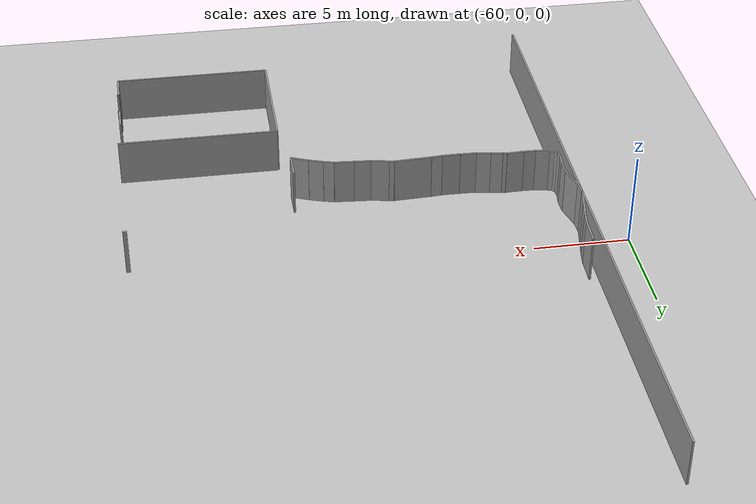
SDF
<sdf version="1.6">
 <world name="default">
  <model name="ground_plane">
   <static>1</static>
   <link name="link">
    <collision name="collision">
     <geometry><plane><normal>0 0 1</normal><size>100 100</size></plane></geometry>
     <surface><friction><ode><mu>100</mu><mu2>50</mu2></ode></friction></surface>
    </collision>
    <visual name="visual">
     <cast_shadows>0</cast_shadows>
     <geometry><plane><normal>0 0 1</normal><size>100 100</size></plane></geometry>
     <material>
      <script><uri>file://media/materials/scripts/gazebo.material</uri><name>Gazebo/Grey</name></script>
     </material>
    </visual>
   </link>
  </model>
  <model name="0510030939_A_40_1_103">
   <static>1</static>
   <link name="Wall_9">
    <collision name="Wall_9_Collision">
     <geometry><box><size>0.397898713287 0.1 2.5</size></box></geometry>
     <pose>0.198949356643 0 1.25 0 0 0</pose>
    </collision>
    <visual name="Wall_9_Visual">
     <pose>0.198949356643 0 1.25 0 0 0</pose>
     <geometry><box><size>0.397898713287 0.1 2.5</size></box></geometry>
     <material>
      <script><uri>file://media/materials/scripts/gazebo.material</uri><name>Gazebo/Grey</name></script>
      <ambient>1 1 1 1</ambient>
     </material>
    </visual>
    <pose>0.363084156686 -22.5781364171 0 0 0 1.68149234334</pose>
   </link>
   <link name="Wall_10">
    <collision name="Wall_10_Collision">
     <geometry><box><size>0.665108872387 0.1 2.5</size></box></geometry>
     <pose>0.332554436194 0 1.25 0 0 0</pose>
    </collision>
    <visual name="Wall_10_Visual">
     <pose>0.332554436194 0 1.25 0 0 0</pose>
     <geometry><box><size>0.665108872387 0.1 2.5</size></box></geometry>
     <material>
      <script><uri>file://media/materials/scripts/gazebo.material</uri><name>Gazebo/Grey</name></script>
      <ambient>1 1 1 1</ambient>
     </material>
    </visual>
    <pose>0.319128252375 -22.1826730629 0 0 0 1.43825110736</pose>
   </link>
   <link name="Wall_11">
    <collision name="Wall_11_Collision">
     <geometry><box><size>0.772687319202 0.1 2.5</size></box></geometry>
     <pose>0.386343659601 0 1.25 0 0 0</pose>
    </collision>
    <visual name="Wall_11_Visual">
     <pose>0.386343659601 0 1.25 0 0 0</pose>
     <geometry><box><size>0.772687319202 0.1 2.5</size></box></geometry>
     <material>
      <script><uri>file://media/materials/scripts/gazebo.material</uri><name>Gazebo/Grey</name></script>
      <ambient>1 1 1 1</ambient>
     </material>
    </visual>
    <pose>0.407027353306 -21.5233980367 0 0 0 1.60914157728</pose>
   </link>
   <link name="Wall_12">
    <collision name="Wall_12_Collision">
     <geometry><box><size>1.2908194455 0.1 2.5</size></box></geometry>
     <pose>0.645409722752 0 1.25 0 0 0</pose>
    </collision>
    <visual name="Wall_12_Visual">
     <pose>0.645409722752 0 1.25 0 0 0</pose>
     <geometry><box><size>1.2908194455 0.1 2.5</size></box></geometry>
     <material>
      <script><uri>file://media/materials/scripts/gazebo.material</uri><name>Gazebo/Grey</name></script>
      <ambient>1 1 1 1</ambient>
     </material>
    </visual>
    <pose>0.377405724815 -20.7512787114 0 0 0 1.83284775393</pose>
   </link>
   <link name="Wall_13">
    <collision name="Wall_13_Collision">
     <geometry><box><size>0.670313680231 0.1 2.5</size></box></geometry>
     <pose>0.335156840115 0 1.25 0 0 0</pose>
    </collision>
    <visual name="Wall_13_Visual">
     <pose>0.335156840115 0 1.25 0 0 0</pose>
     <geometry><box><size>0.670313680231 0.1 2.5</size></box></geometry>
     <material>
      <script><uri>file://media/materials/scripts/gazebo.material</uri><name>Gazebo/Grey</name></script>
      <ambient>1 1 1 1</ambient>
     </material>
    </visual>
    <pose>0.0430028274613 -19.504527115 0 0 0 1.63499370317</pose>
   </link>
   <link name="Wall_14">
    <collision name="Wall_14_Collision">
     <geometry><box><size>1.0477580429 0.1 2.5</size></box></geometry>
     <pose>0.52387902145 0 1.25 0 0 0</pose>
    </collision>
    <visual name="Wall_14_Visual">
     <pose>0.52387902145 0 1.25 0 0 0</pose>
     <geometry><box><size>1.0477580429 0.1 2.5</size></box></geometry>
     <material>
      <script><uri>file://media/materials/scripts/gazebo.material</uri><name>Gazebo/Grey</name></script>
      <ambient>1 1 1 1</ambient>
     </material>
    </visual>
    <pose>0.0 -18.8355942434 0 0 0 1.40280433486</pose>
   </link>
   <link name="Wall_15">
    <collision name="Wall_15_Collision">
     <geometry><box><size>1.00523139012 0.1 2.5</size></box></geometry>
     <pose>0.502615695059 0 1.25 0 0 0</pose>
    </collision>
    <visual name="Wall_15_Visual">
     <pose>0.502615695059 0 1.25 0 0 0</pose>
     <geometry><box><size>1.00523139012 0.1 2.5</size></box></geometry>
     <material>
      <script><uri>file://media/materials/scripts/gazebo.material</uri><name>Gazebo/Grey</name></script>
      <ambient>1 1 1 1</ambient>
     </material>
    </visual>
    <pose>0.175188232678 -17.8025860152 0 0 0 1.38277233144</pose>
   </link>
   <link name="Wall_16">
    <collision name="Wall_16_Collision">
     <geometry><box><size>0.703167774783 0.1 2.5</size></box></geometry>
     <pose>0.351583887391 0 1.25 0 0 0</pose>
    </collision>
    <visual name="Wall_16_Visual">
     <pose>0.351583887391 0 1.25 0 0 0</pose>
     <geometry><box><size>0.703167774783 0.1 2.5</size></box></geometry>
     <material>
      <script><uri>file://media/materials/scripts/gazebo.material</uri><name>Gazebo/Grey</name></script>
      <ambient>1 1 1 1</ambient>
     </material>
    </visual>
    <pose>0.363084156686 -16.8150713219 0 0 0 1.44546401047</pose>
   </link>
   <link name="Wall_17">
    <collision name="Wall_17_Collision">
     <geometry><box><size>1.38489533323 0.1 2.5</size></box></geometry>
     <pose>0.692447666616 0 1.25 0 0 0</pose>
    </collision>
    <visual name="Wall_17_Visual">
     <pose>0.692447666616 0 1.25 0 0 0</pose>
     <geometry><box><size>1.38489533323 0.1 2.5</size></box></geometry>
     <material>
      <script><uri>file://media/materials/scripts/gazebo.material</uri><name>Gazebo/Grey</name></script>
      <ambient>1 1 1 1</ambient>
     </material>
    </visual>
    <pose>0.450983257617 -16.1174190679 0 0 0 1.54699173743</pose>
   </link>
   <link name="Wall_47">
    <collision name="Wall_47_Collision">
     <geometry><box><size>0.212599675954 0.1 2.5</size></box></geometry>
     <pose>0.106299837977 0 1.25 0 0 0</pose>
    </collision>
    <visual name="Wall_47_Visual">
     <pose>0.106299837977 0 1.25 0 0 0</pose>
     <geometry><box><size>0.212599675954 0.1 2.5</size></box></geometry>
     <material>
      <script><uri>file://media/materials/scripts/gazebo.material</uri><name>Gazebo/Grey</name></script>
      <ambient>1 1 1 1</ambient>
     </material>
    </visual>
    <pose>23.1380754201 -18.7676080948 0 0 0 0.0</pose>
   </link>
   <link name="Wall_51">
    <collision name="Wall_51_Collision">
     <geometry><box><size>1.47345680973 0.1 2.5</size></box></geometry>
     <pose>0.736728404867 0 1.25 0 0 0</pose>
    </collision>
    <visual name="Wall_51_Visual">
     <pose>0.736728404867 0 1.25 0 0 0</pose>
     <geometry><box><size>1.47345680973 0.1 2.5</size></box></geometry>
     <material>
      <script><uri>file://media/materials/scripts/gazebo.material</uri><name>Gazebo/Grey</name></script>
      <ambient>1 1 1 1</ambient>
     </material>
    </visual>
    <pose>14.3930234775 -22.6842456397 0 0 0 -1.57079632679</pose>
   </link>
   <link name="Wall_52">
    <collision name="Wall_52_Collision">
     <geometry><box><size>0.981270283015 0.1 2.5</size></box></geometry>
     <pose>0.490635141507 0 1.25 0 0 0</pose>
    </collision>
    <visual name="Wall_52_Visual">
     <pose>0.490635141507 0 1.25 0 0 0</pose>
     <geometry><box><size>0.981270283015 0.1 2.5</size></box></geometry>
     <material>
      <script><uri>file://media/materials/scripts/gazebo.material</uri><name>Gazebo/Grey</name></script>
      <ambient>1 1 1 1</ambient>
     </material>
    </visual>
    <pose>14.3930234775 -24.1577024494 0 0 0 2.74482911056</pose>
   </link>
   <link name="Wall_53">
    <collision name="Wall_53_Collision">
     <geometry><box><size>0.784336868416 0.1 2.5</size></box></geometry>
     <pose>0.392168434208 0 1.25 0 0 0</pose>
    </collision>
    <visual name="Wall_53_Visual">
     <pose>0.392168434208 0 1.25 0 0 0</pose>
     <geometry><box><size>0.784336868416 0.1 2.5</size></box></geometry>
     <material>
      <script><uri>file://media/materials/scripts/gazebo.material</uri><name>Gazebo/Grey</name></script>
      <ambient>1 1 1 1</ambient>
     </material>
    </visual>
    <pose>13.4879817009 -23.7785049401 0 0 0 2.81810011919</pose>
   </link>
   <link name="Wall_54">
    <collision name="Wall_54_Collision">
     <geometry><box><size>0.566944915028 0.1 2.5</size></box></geometry>
     <pose>0.283472457514 0 1.25 0 0 0</pose>
    </collision>
    <visual name="Wall_54_Visual">
     <pose>0.283472457514 0 1.25 0 0 0</pose>
     <geometry><box><size>0.566944915028 0.1 2.5</size></box></geometry>
     <material>
      <script><uri>file://media/materials/scripts/gazebo.material</uri><name>Gazebo/Grey</name></script>
      <ambient>1 1 1 1</ambient>
     </material>
    </visual>
    <pose>12.7443276043 -23.5291800362 0 0 0 2.88204426087</pose>
   </link>
   <link name="Wall_55">
    <collision name="Wall_55_Collision">
     <geometry><box><size>1.05852298376 0.1 2.5</size></box></geometry>
     <pose>0.529261491879 0 1.25 0 0 0</pose>
    </collision>
    <visual name="Wall_55_Visual">
     <pose>0.529261491879 0 1.25 0 0 0</pose>
     <geometry><box><size>1.05852298376 0.1 2.5</size></box></geometry>
     <material>
      <script><uri>file://media/materials/scripts/gazebo.material</uri><name>Gazebo/Grey</name></script>
      <ambient>1 1 1 1</ambient>
     </material>
    </visual>
    <pose>12.1963719541 -23.3836769705 0 0 0 3.06925879369</pose>
   </link>
   <link name="Wall_56">
    <collision name="Wall_56_Collision">
     <geometry><box><size>0.857853238518 0.1 2.5</size></box></geometry>
     <pose>0.428926619259 0 1.25 0 0 0</pose>
    </collision>
    <visual name="Wall_56_Visual">
     <pose>0.428926619259 0 1.25 0 0 0</pose>
     <geometry><box><size>0.857853238518 0.1 2.5</size></box></geometry>
     <material>
      <script><uri>file://media/materials/scripts/gazebo.material</uri><name>Gazebo/Grey</name></script>
      <ambient>1 1 1 1</ambient>
     </material>
    </visual>
    <pose>11.1406169584 -23.3071766687 0 0 0 3.07131948923</pose>
   </link>
   <link name="Wall_57">
    <collision name="Wall_57_Collision">
     <geometry><box><size>0.98062339268 0.1 2.5</size></box></geometry>
     <pose>0.49031169634 0 1.25 0 0 0</pose>
    </collision>
    <visual name="Wall_57_Visual">
     <pose>0.49031169634 0 1.25 0 0 0</pose>
     <geometry><box><size>0.98062339268 0.1 2.5</size></box></geometry>
     <material>
      <script><uri>file://media/materials/scripts/gazebo.material</uri><name>Gazebo/Grey</name></script>
      <ambient>1 1 1 1</ambient>
     </material>
    </visual>
    <pose>10.2848810242 -23.2469422118 0 0 0 2.96008168394</pose>
   </link>
   <link name="Wall_58">
    <collision name="Wall_58_Collision">
     <geometry><box><size>0.270733181045 0.1 2.5</size></box></geometry>
     <pose>0.135366590522 0 1.25 0 0 0</pose>
    </collision>
    <visual name="Wall_58_Visual">
     <pose>0.135366590522 0 1.25 0 0 0</pose>
     <geometry><box><size>0.270733181045 0.1 2.5</size></box></geometry>
     <material>
      <script><uri>file://media/materials/scripts/gazebo.material</uri><name>Gazebo/Grey</name></script>
      <ambient>1 1 1 1</ambient>
     </material>
    </visual>
    <pose>9.32036725228 -23.0699240715 0 0 0 2.98084243535</pose>
   </link>
   <link name="Wall_59">
    <collision name="Wall_59_Collision">
     <geometry><box><size>2.00081593142 0.1 2.5</size></box></geometry>
     <pose>1.00040796571 0 1.25 0 0 0</pose>
    </collision>
    <visual name="Wall_59_Visual">
     <pose>1.00040796571 0 1.25 0 0 0</pose>
     <geometry><box><size>2.00081593142 0.1 2.5</size></box></geometry>
     <material>
      <script><uri>file://media/materials/scripts/gazebo.material</uri><name>Gazebo/Grey</name></script>
      <ambient>1 1 1 1</ambient>
     </material>
    </visual>
    <pose>9.05312450361 -23.0265908441 0 0 0 -3.09387662703</pose>
   </link>
   <link name="Wall_60">
    <collision name="Wall_60_Collision">
     <geometry><box><size>0.590427360554 0.1 2.5</size></box></geometry>
     <pose>0.295213680277 0 1.25 0 0 0</pose>
    </collision>
    <visual name="Wall_60_Visual">
     <pose>0.295213680277 0 1.25 0 0 0</pose>
     <geometry><box><size>0.590427360554 0.1 2.5</size></box></geometry>
     <material>
      <script><uri>file://media/materials/scripts/gazebo.material</uri><name>Gazebo/Grey</name></script>
      <ambient>1 1 1 1</ambient>
     </material>
    </visual>
    <pose>7.05458588811 -23.122025606 0 0 0 -3.04826319616</pose>
   </link>
   <link name="Wall_61">
    <collision name="Wall_61_Collision">
     <geometry><box><size>0.972407893654 0.1 2.5</size></box></geometry>
     <pose>0.486203946827 0 1.25 0 0 0</pose>
    </collision>
    <visual name="Wall_61_Visual">
     <pose>0.486203946827 0 1.25 0 0 0</pose>
     <geometry><box><size>0.972407893654 0.1 2.5</size></box></geometry>
     <material>
      <script><uri>file://media/materials/scripts/gazebo.material</uri><name>Gazebo/Grey</name></script>
      <ambient>1 1 1 1</ambient>
     </material>
    </visual>
    <pose>6.46672808717 -23.1770499095 0 0 0 -3.13597326684</pose>
   </link>
   <link name="Wall_62">
    <collision name="Wall_62_Collision">
     <geometry><box><size>0.863412816515 0.1 2.5</size></box></geometry>
     <pose>0.431706408257 0 1.25 0 0 0</pose>
    </collision>
    <visual name="Wall_62_Visual">
     <pose>0.431706408257 0 1.25 0 0 0</pose>
     <geometry><box><size>0.863412816515 0.1 2.5</size></box></geometry>
     <material>
      <script><uri>file://media/materials/scripts/gazebo.material</uri><name>Gazebo/Grey</name></script>
      <ambient>1 1 1 1</ambient>
     </material>
    </visual>
    <pose>5.49433554659 -23.1825142167 0 0 0 3.11494996051</pose>
   </link>
   <link name="Wall_63">
    <collision name="Wall_63_Collision">
     <geometry><box><size>0.766190139482 0.1 2.5</size></box></geometry>
     <pose>0.383095069741 0 1.25 0 0 0</pose>
    </collision>
    <visual name="Wall_63_Visual">
     <pose>0.383095069741 0 1.25 0 0 0</pose>
     <geometry><box><size>0.766190139482 0.1 2.5</size></box></geometry>
     <material>
      <script><uri>file://media/materials/scripts/gazebo.material</uri><name>Gazebo/Grey</name></script>
      <ambient>1 1 1 1</ambient>
     </material>
    </visual>
    <pose>4.63122915144 -23.1595132954 0 0 0 2.9781617659</pose>
   </link>
   <link name="Wall_64">
    <collision name="Wall_64_Collision">
     <geometry><box><size>0.632165227939 0.1 2.5</size></box></geometry>
     <pose>0.316082613969 0 1.25 0 0 0</pose>
    </collision>
    <visual name="Wall_64_Visual">
     <pose>0.316082613969 0 1.25 0 0 0</pose>
     <geometry><box><size>0.632165227939 0.1 2.5</size></box></geometry>
     <material>
      <script><uri>file://media/materials/scripts/gazebo.material</uri><name>Gazebo/Grey</name></script>
      <ambient>1 1 1 1</ambient>
     </material>
    </visual>
    <pose>3.87524859421 -23.0348508435 0 0 0 2.96580256413</pose>
   </link>
   <link name="Wall_65">
    <collision name="Wall_65_Collision">
     <geometry><box><size>0.219143980399 0.1 2.5</size></box></geometry>
     <pose>0.1095719902 0 1.25 0 0 0</pose>
    </collision>
    <visual name="Wall_65_Visual">
     <pose>0.1095719902 0 1.25 0 0 0</pose>
     <geometry><box><size>0.219143980399 0.1 2.5</size></box></geometry>
     <material>
      <script><uri>file://media/materials/scripts/gazebo.material</uri><name>Gazebo/Grey</name></script>
      <ambient>1 1 1 1</ambient>
     </material>
    </visual>
    <pose>3.25282587286 -22.9242939289 0 0 0 3.03119157995</pose>
   </link>
   <link name="Wall_66">
    <collision name="Wall_66_Collision">
     <geometry><box><size>0.914649446551 0.1 2.5</size></box></geometry>
     <pose>0.457324723276 0 1.25 0 0 0</pose>
    </collision>
    <visual name="Wall_66_Visual">
     <pose>0.457324723276 0 1.25 0 0 0</pose>
     <geometry><box><size>0.914649446551 0.1 2.5</size></box></geometry>
     <material>
      <script><uri>file://media/materials/scripts/gazebo.material</uri><name>Gazebo/Grey</name></script>
      <ambient>1 1 1 1</ambient>
     </material>
    </visual>
    <pose>3.03501604346 -22.9001493154 0 0 0 -3.10212483913</pose>
   </link>
   <link name="Wall_67">
    <collision name="Wall_67_Collision">
     <geometry><box><size>0.632414306692 0.1 2.5</size></box></geometry>
     <pose>0.316207153346 0 1.25 0 0 0</pose>
    </collision>
    <visual name="Wall_67_Visual">
     <pose>0.316207153346 0 1.25 0 0 0</pose>
     <geometry><box><size>0.632414306692 0.1 2.5</size></box></geometry>
     <material>
      <script><uri>file://media/materials/scripts/gazebo.material</uri><name>Gazebo/Grey</name></script>
      <ambient>1 1 1 1</ambient>
     </material>
    </visual>
    <pose>2.12107888299 -22.9362391588 0 0 0 3.11305539415</pose>
   </link>
   <link name="Wall_68">
    <collision name="Wall_68_Collision">
     <geometry><box><size>0.746912160498 0.1 2.5</size></box></geometry>
     <pose>0.373456080249 0 1.25 0 0 0</pose>
    </collision>
    <visual name="Wall_68_Visual">
     <pose>0.373456080249 0 1.25 0 0 0</pose>
     <geometry><box><size>0.746912160498 0.1 2.5</size></box></geometry>
     <material>
      <script><uri>file://media/materials/scripts/gazebo.material</uri><name>Gazebo/Grey</name></script>
      <ambient>1 1 1 1</ambient>
     </material>
    </visual>
    <pose>1.48892207008 -22.9181942371 0 0 0 2.97027929521</pose>
   </link>
   <link name="Wall_69">
    <collision name="Wall_69_Collision">
     <geometry><box><size>0.271215814315 0.1 2.5</size></box></geometry>
     <pose>0.135607907158 0 1.25 0 0 0</pose>
    </collision>
    <visual name="Wall_69_Visual">
     <pose>0.135607907158 0 1.25 0 0 0</pose>
     <geometry><box><size>0.271215814315 0.1 2.5</size></box></geometry>
     <material>
      <script><uri>file://media/materials/scripts/gazebo.material</uri><name>Gazebo/Grey</name></script>
      <ambient>1 1 1 1</ambient>
     </material>
    </visual>
    <pose>0.752943419004 -22.7908631699 0 0 0 2.83900127149</pose>
   </link>
   <link name="Wall_70">
    <collision name="Wall_70_Collision">
     <geometry><box><size>0.185879270172 0.1 2.5</size></box></geometry>
     <pose>0.092939635086 0 1.25 0 0 0</pose>
    </collision>
    <visual name="Wall_70_Visual">
     <pose>0.092939635086 0 1.25 0 0 0</pose>
     <geometry><box><size>0.185879270172 0.1 2.5</size></box></geometry>
     <material>
      <script><uri>file://media/materials/scripts/gazebo.material</uri><name>Gazebo/Grey</name></script>
      <ambient>1 1 1 1</ambient>
     </material>
    </visual>
    <pose>0.494049623535 -22.7100422531 0 0 0 2.3526172068</pose>
   </link>
   <link name="Wall_96">
    <collision name="Wall_96_Collision">
     <geometry><box><size>6.52641611335 0.1 2.5</size></box></geometry>
     <pose>3.26320805668 0 1.25 0 0 0</pose>
    </collision>
    <visual name="Wall_96_Visual">
     <pose>3.26320805668 0 1.25 0 0 0</pose>
     <geometry><box><size>6.52641611335 0.1 2.5</size></box></geometry>
     <material>
      <script><uri>file://media/materials/scripts/gazebo.material</uri><name>Gazebo/Grey</name></script>
      <ambient>1 1 1 1</ambient>
     </material>
    </visual>
    <pose>14.82025606 -33.3953045081 0 0 0 1.57079632679</pose>
   </link>
   <link name="Wall_97">
    <collision name="Wall_97_Collision">
     <geometry><box><size>8.52965657464 0.1 2.5</size></box></geometry>
     <pose>4.26482828732 0 1.25 0 0 0</pose>
    </collision>
    <visual name="Wall_97_Visual">
     <pose>4.26482828732 0 1.25 0 0 0</pose>
     <geometry><box><size>8.52965657464 0.1 2.5</size></box></geometry>
     <material>
      <script><uri>file://media/materials/scripts/gazebo.material</uri><name>Gazebo/Grey</name></script>
      <ambient>1 1 1 1</ambient>
     </material>
    </visual>
    <pose>14.82025606 -26.8688883947 0 0 0 0.0</pose>
   </link>
   <link name="Wall_101">
    <collision name="Wall_101_Collision">
     <geometry><box><size>1.40216666137 0.1 2.5</size></box></geometry>
     <pose>0.701083330686 0 1.25 0 0 0</pose>
    </collision>
    <visual name="Wall_101_Visual">
     <pose>0.701083330686 0 1.25 0 0 0</pose>
     <geometry><box><size>1.40216666137 0.1 2.5</size></box></geometry>
     <material>
      <script><uri>file://media/materials/scripts/gazebo.material</uri><name>Gazebo/Grey</name></script>
      <ambient>1 1 1 1</ambient>
     </material>
    </visual>
    <pose>23.1629824952 -28.7801251708 0 0 0 -1.57079632679</pose>
   </link>
   <link name="Wall_102">
    <collision name="Wall_102_Collision">
     <geometry><box><size>0.0330399974585 0.1 2.5</size></box></geometry>
     <pose>0.0165199987292 0 1.25 0 0 0</pose>
    </collision>
    <visual name="Wall_102_Visual">
     <pose>0.0165199987292 0 1.25 0 0 0</pose>
     <geometry><box><size>0.0330399974585 0.1 2.5</size></box></geometry>
     <material>
      <script><uri>file://media/materials/scripts/gazebo.material</uri><name>Gazebo/Grey</name></script>
      <ambient>1 1 1 1</ambient>
     </material>
    </visual>
    <pose>23.1629824952 -30.1822918321 0 0 0 0.0</pose>
   </link>
   <link name="Wall_103">
    <collision name="Wall_103_Collision">
     <geometry><box><size>0.0785335324205 0.1 2.5</size></box></geometry>
     <pose>0.0392667662103 0 1.25 0 0 0</pose>
    </collision>
    <visual name="Wall_103_Visual">
     <pose>0.0392667662103 0 1.25 0 0 0</pose>
     <geometry><box><size>0.0785335324205 0.1 2.5</size></box></geometry>
     <material>
      <script><uri>file://media/materials/scripts/gazebo.material</uri><name>Gazebo/Grey</name></script>
      <ambient>1 1 1 1</ambient>
     </material>
    </visual>
    <pose>23.1960224926 -30.1822918321 0 0 0 -1.57079632679</pose>
   </link>
   <link name="Wall_104">
    <collision name="Wall_104_Collision">
     <geometry><box><size>0.0847603011723 0.1 2.5</size></box></geometry>
     <pose>0.0423801505861 0 1.25 0 0 0</pose>
    </collision>
    <visual name="Wall_104_Visual">
     <pose>0.0423801505861 0 1.25 0 0 0</pose>
     <geometry><box><size>0.0847603011723 0.1 2.5</size></box></geometry>
     <material>
      <script><uri>file://media/materials/scripts/gazebo.material</uri><name>Gazebo/Grey</name></script>
      <ambient>1 1 1 1</ambient>
     </material>
    </visual>
    <pose>23.1960224926 -31.8345458589 0 0 0 -1.57079632679</pose>
   </link>
   <link name="Wall_106">
    <collision name="Wall_106_Collision">
     <geometry><box><size>1.47828573244 0.1 2.5</size></box></geometry>
     <pose>0.73914286622 0 1.25 0 0 0</pose>
    </collision>
    <visual name="Wall_106_Visual">
     <pose>0.73914286622 0 1.25 0 0 0</pose>
     <geometry><box><size>1.47828573244 0.1 2.5</size></box></geometry>
     <material>
      <script><uri>file://media/materials/scripts/gazebo.material</uri><name>Gazebo/Grey</name></script>
      <ambient>1 1 1 1</ambient>
     </material>
    </visual>
    <pose>23.1614575722 -31.9193061601 0 0 0 -1.57079632679</pose>
   </link>
   <link name="Wall_107">
    <collision name="Wall_107_Collision">
     <geometry><box><size>8.34120182585 0.1 2.5</size></box></geometry>
     <pose>4.17060091292 0 1.25 0 0 0</pose>
    </collision>
    <visual name="Wall_107_Visual">
     <pose>4.17060091292 0 1.25 0 0 0</pose>
     <geometry><box><size>8.34120182585 0.1 2.5</size></box></geometry>
     <material>
      <script><uri>file://media/materials/scripts/gazebo.material</uri><name>Gazebo/Grey</name></script>
      <ambient>1 1 1 1</ambient>
     </material>
    </visual>
    <pose>23.1614575722 -33.3975918925 0 0 0 3.14131842638</pose>
   </link>
   <link name="Wall_307">
    <collision name="Wall_307_Collision">
     <geometry><box><size>35.3122597452 0.1 2.5</size></box></geometry>
     <pose>17.6561298726 0 1.25 0 0 0</pose>
    </collision>
    <visual name="Wall_307_Visual">
     <pose>17.6561298726 0 1.25 0 0 0</pose>
     <geometry><box><size>35.3122597452 0.1 2.5</size></box></geometry>
     <material>
      <script><uri>file://media/materials/scripts/gazebo.material</uri><name>Gazebo/Grey</name></script>
      <ambient>1 1 1 1</ambient>
     </material>
    </visual>
    <pose>0.0 -35.3122597452 0 0 0 1.57079632679</pose>
   </link>
   <pose>-57.65 17.6622597452 0 0 0 0</pose>
  </model>
 </world>
</sdf>
